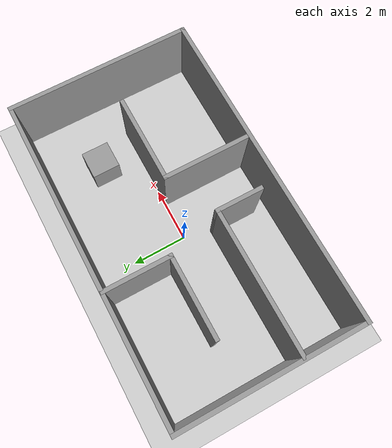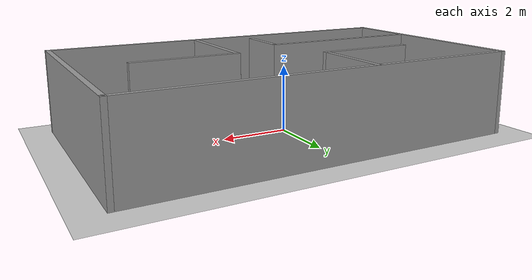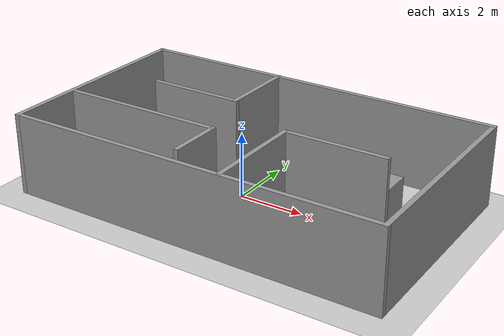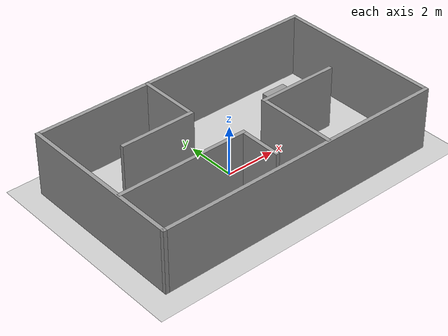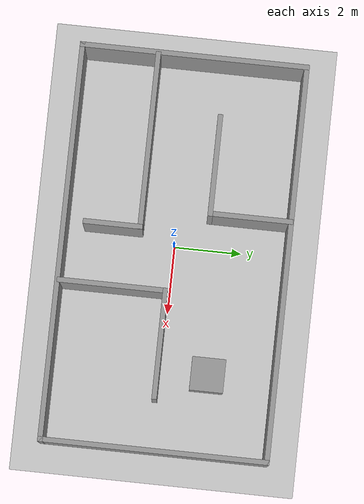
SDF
<sdf version="1.7">
 <world name="default">
  <light name="sun" type="directional">
   <pose>0 0 10 0 -0 0</pose>
   <diffuse>0.8 0.8 0.8 1</diffuse>
   <specular>0.2 0.2 0.2 1</specular>
   <attenuation>
    <range>1000</range>
    <constant>0.9</constant>
    <linear>0.01</linear>
    <quadratic>0.001</quadratic>
   </attenuation>
   <direction>-0.5 0.1 -0.9</direction>
   <spot><inner_angle>0</inner_angle><outer_angle>0</outer_angle><falloff>0</falloff></spot>
  </light>
  <model name="ground_plane">
   <static>1</static>
   <link name="link">
    <collision name="collision">
     <geometry><plane><normal>0 0 1</normal><size>100 100</size></plane></geometry>
     <surface><friction><ode><mu>100</mu><mu2>50</mu2></ode></friction></surface>
    </collision>
    <visual name="visual">
     <cast_shadows>0</cast_shadows>
     <geometry><plane><normal>0 0 1</normal><size>100 100</size></plane></geometry>
     <material>
      <script><uri>file://media/materials/scripts/gazebo.material</uri><name>Gazebo/Grey</name></script>
     </material>
    </visual>
   </link>
  </model>
  <gravity>0 0 -9.8</gravity>
  <magnetic_field>6e-06 2.3e-05 -4.2e-05</magnetic_field>
  <atmosphere type="adiabatic"/>
  <physics type="ode">
   <max_step_size>0.001</max_step_size>
   <real_time_factor>1</real_time_factor>
   <real_time_update_rate>1000</real_time_update_rate>
  </physics>
  <scene><ambient>0.4 0.4 0.4 1</ambient><background>0.7 0.7 0.7 1</background><shadows>1</shadows></scene>
  <audio><device>default</device></audio>
  <spherical_coordinates>
   <surface_model>EARTH_WGS84</surface_model>
   <latitude_deg>0</latitude_deg>
   <longitude_deg>0</longitude_deg>
   <elevation>0</elevation>
   <heading_deg>0</heading_deg>
  </spherical_coordinates>
  <model name="room">
   <pose>0.36126 0.192684 0 0 -0 0</pose>
   <link name="Wall_11">
    <collision name="Wall_11_Collision">
     <geometry><box><size>2.5 0.15 2.5</size></box></geometry>
     <pose>0 0 1.25 0 -0 0</pose>
    </collision>
    <visual name="Wall_11_Visual">
     <pose>0 0 1.25 0 -0 0</pose>
     <geometry><box><size>2.5 0.15 2.5</size></box></geometry>
     <material>
      <script><uri>file://media/materials/scripts/gazebo.material</uri><name>Gazebo/Grey</name></script>
      <ambient>1 1 1 1</ambient>
     </material>
     <meta><layer>0</layer></meta>
    </visual>
    <pose>-1.23422 1.94712 0 0 -0 -1.5708</pose>
   </link>
   <link name="Wall_12">
    <collision name="Wall_12_Collision">
     <geometry><box><size>3 0.15 2.5</size></box></geometry>
     <pose>0 0 1.25 0 -0 0</pose>
    </collision>
    <visual name="Wall_12_Visual">
     <pose>0 0 1.25 0 -0 0</pose>
     <geometry><box><size>3 0.15 2.5</size></box></geometry>
     <material>
      <script><uri>file://media/materials/scripts/gazebo.material</uri><name>Gazebo/Grey</name></script>
      <ambient>1 1 1 1</ambient>
     </material>
     <meta><layer>0</layer></meta>
    </visual>
    <pose>-2.65922 0.772121 0 0 -0 3.14159</pose>
   </link>
   <link name="Wall_14">
    <collision name="Wall_14_Collision">
     <geometry><box><size>5.25 0.15 2.5</size></box></geometry>
     <pose>0 0 1.25 0 -0 0</pose>
    </collision>
    <visual name="Wall_14_Visual">
     <pose>0 0 1.25 0 -0 0</pose>
     <geometry><box><size>5.25 0.15 2.5</size></box></geometry>
     <material>
      <script><uri>file://media/materials/scripts/gazebo.material</uri><name>Gazebo/Grey</name></script>
      <ambient>1 1 1 1</ambient>
     </material>
     <meta><layer>0</layer></meta>
    </visual>
    <pose>-3.18966 -1.22241 0 0 -0 0</pose>
   </link>
   <link name="Wall_15">
    <collision name="Wall_15_Collision">
     <geometry><box><size>1.75 0.15 2.5</size></box></geometry>
     <pose>0 0 1.25 0 -0 0</pose>
    </collision>
    <visual name="Wall_15_Visual">
     <pose>0 0 1.25 0 -0 0</pose>
     <geometry><box><size>1.75 0.15 2.5</size></box></geometry>
     <material>
      <script><uri>file://media/materials/scripts/gazebo.material</uri><name>Gazebo/Grey</name></script>
      <ambient>1 1 1 1</ambient>
     </material>
     <meta><layer>0</layer></meta>
    </visual>
    <pose>-0.639659 -2.02241 0 0 -0 -1.5708</pose>
   </link>
   <link name="Wall_18">
    <collision name="Wall_18_Collision">
     <geometry><box><size>3.25 0.15 2.5</size></box></geometry>
     <pose>0 0 1.25 0 -0 0</pose>
    </collision>
    <visual name="Wall_18_Visual">
     <pose>0 0 1.25 0 -0 0</pose>
     <geometry><box><size>3.25 0.15 2.5</size></box></geometry>
     <material>
      <script><uri>file://media/materials/scripts/gazebo.material</uri><name>Gazebo/Grey</name></script>
      <ambient>1 1 1 1</ambient>
     </material>
     <meta><layer>0</layer></meta>
    </visual>
    <pose>1.13918 -1.84468 0 0 -0 1.5708</pose>
   </link>
   <link name="Wall_19">
    <collision name="Wall_19_Collision">
     <geometry><box><size>3.25 0.15 2.5</size></box></geometry>
     <pose>0 0 1.25 0 -0 0</pose>
    </collision>
    <visual name="Wall_19_Visual">
     <pose>0 0 1.25 0 -0 0</pose>
     <geometry><box><size>3.25 0.15 2.5</size></box></geometry>
     <material>
      <script><uri>file://media/materials/scripts/gazebo.material</uri><name>Gazebo/Grey</name></script>
      <ambient>1 1 1 1</ambient>
     </material>
     <meta><layer>0</layer></meta>
    </visual>
    <pose>2.68918 -0.294676 0 0 -0 0</pose>
   </link>
   <link name="Wall_6">
    <collision name="Wall_6_Collision">
     <geometry><box><size>11.75 0.15 2.5</size></box></geometry>
     <pose>0 0 1.25 0 -0 0</pose>
    </collision>
    <visual name="Wall_6_Visual">
     <pose>0 0 1.25 0 -0 0</pose>
     <geometry><box><size>11.75 0.15 2.5</size></box></geometry>
     <material>
      <script><uri>file://media/materials/scripts/gazebo.material</uri><name>Gazebo/Grey</name></script>
      <ambient>1 1 1 1</ambient>
     </material>
     <meta><layer>0</layer></meta>
    </visual>
    <pose>-0 3.14223 0 0 -0 0</pose>
   </link>
   <link name="Wall_7">
    <collision name="Wall_7_Collision">
     <geometry><box><size>6.75 0.15 2.5</size></box></geometry>
     <pose>0 0 1.25 0 -0 0</pose>
    </collision>
    <visual name="Wall_7_Visual">
     <pose>0 0 1.25 0 -0 0</pose>
     <geometry><box><size>6.75 0.15 2.5</size></box></geometry>
     <material>
      <script><uri>file://media/materials/scripts/gazebo.material</uri><name>Gazebo/Grey</name></script>
      <ambient>1 1 1 1</ambient>
     </material>
     <meta><layer>0</layer></meta>
    </visual>
    <pose>5.8 -0.157765 0 0 -0 -1.5708</pose>
   </link>
   <link name="Wall_8">
    <collision name="Wall_8_Collision">
     <geometry><box><size>11.75 0.15 2.5</size></box></geometry>
     <pose>0 0 1.25 0 -0 0</pose>
    </collision>
    <visual name="Wall_8_Visual">
     <pose>0 0 1.25 0 -0 0</pose>
     <geometry><box><size>11.75 0.15 2.5</size></box></geometry>
     <material>
      <script><uri>file://media/materials/scripts/gazebo.material</uri><name>Gazebo/Grey</name></script>
      <ambient>1 1 1 1</ambient>
     </material>
     <meta><layer>0</layer></meta>
    </visual>
    <pose>-0 -3.45777 0 0 -0 3.14159</pose>
   </link>
   <link name="Wall_9">
    <collision name="Wall_9_Collision">
     <geometry><box><size>6.75 0.15 2.5</size></box></geometry>
     <pose>0 0 1.25 0 -0 0</pose>
    </collision>
    <visual name="Wall_9_Visual">
     <pose>0 0 1.25 0 -0 0</pose>
     <geometry><box><size>6.75 0.15 2.5</size></box></geometry>
     <material>
      <script><uri>file://media/materials/scripts/gazebo.material</uri><name>Gazebo/Grey</name></script>
      <ambient>1 1 1 1</ambient>
     </material>
     <meta><layer>0</layer></meta>
    </visual>
    <pose>-5.8 -0.157765 0 0 -0 1.5708</pose>
   </link>
   <static>1</static>
  </model>
  <model name="unit_box">
   <pose>3.73296 1.37941 0.5 0 -0 0</pose>
   <link name="link">
    <inertial>
     <mass>1</mass>
     <inertia>
      <ixx>0.166667</ixx>
      <ixy>0</ixy>
      <ixz>0</ixz>
      <iyy>0.166667</iyy>
      <iyz>0</iyz>
      <izz>0.166667</izz>
     </inertia>
    </inertial>
    <collision name="collision"><geometry><box><size>1 1 1</size></box></geometry></collision>
    <visual name="visual">
     <geometry><box><size>1 1 1</size></box></geometry>
     <material>
      <script><name>Gazebo/Grey</name><uri>file://media/materials/scripts/gazebo.material</uri></script>
     </material>
    </visual>
   </link>
  </model>
 </world>
</sdf>
